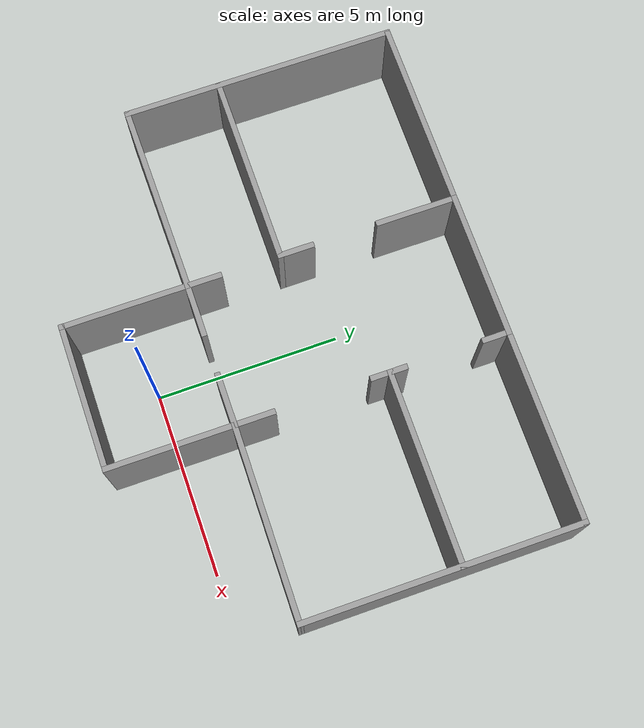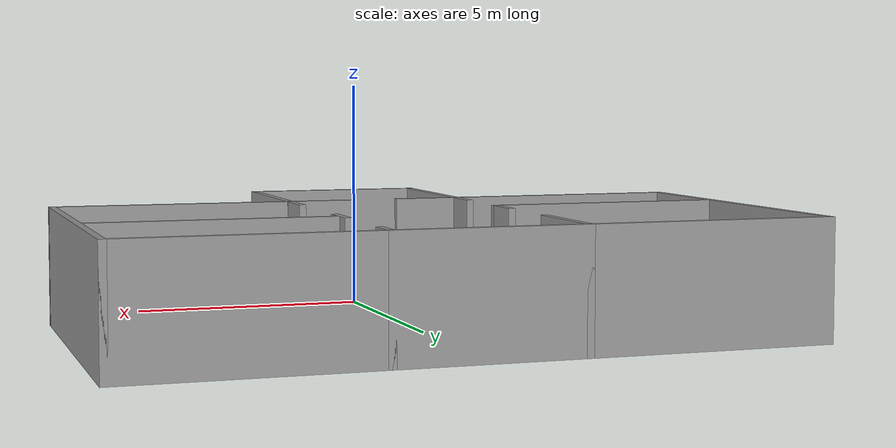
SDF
<?xml version='1.0'?>
<sdf version='1.7'>
  <model name='mieszkanie1'>
    <pose>0.001962 3.60263 0 0 -0 0</pose>
    <link name='Wall_12'>
      <collision name='Wall_12_Collision'>
        <geometry>
          <box>
            <size>1.5 0.15 2.5</size>
          </box>
        </geometry>
        <pose>0 0 1.25 0 -0 0</pose>
      </collision>
      <visual name='Wall_12_Visual'>
        <pose>0 0 1.25 0 -0 0</pose>
        <geometry>
          <box>
            <size>1.5 0.15 2.5</size>
          </box>
        </geometry>
        <material>
          <script>
            <uri>file://media/materials/scripts/gazebo.material</uri>
            <name>Gazebo/Grey</name>
          </script>
          <ambient>1 1 1 1</ambient>
        </material>
        <meta>
          <layer>0</layer>
        </meta>
      </visual>
      <pose>-1.24772 -1.97498 0 0 -0 0</pose>
    </link>
    <link name='Wall_14'>
      <collision name='Wall_14_Collision'>
        <geometry>
          <box>
            <size>1.5 0.15 2.5</size>
          </box>
        </geometry>
        <pose>0 0 1.25 0 -0 0</pose>
      </collision>
      <visual name='Wall_14_Visual'>
        <pose>0 0 1.25 0 -0 0</pose>
        <geometry>
          <box>
            <size>1.5 0.15 2.5</size>
          </box>
        </geometry>
        <material>
          <script>
            <uri>file://media/materials/scripts/gazebo.material</uri>
            <name>Gazebo/Grey</name>
          </script>
          <ambient>1 1 1 1</ambient>
        </material>
        <meta>
          <layer>0</layer>
        </meta>
      </visual>
      <pose>1.25228 -1.97498 0 0 -0 3.14159</pose>
    </link>
    <link name='Wall_16'>
      <collision name='Wall_16_Collision'>
        <geometry>
          <box>
            <size>1 0.15 2.5</size>
          </box>
        </geometry>
        <pose>0 0 1.25 0 -0 0</pose>
      </collision>
      <visual name='Wall_16_Visual'>
        <pose>0 0 1.25 0 -0 0</pose>
        <geometry>
          <box>
            <size>1 0.15 2.5</size>
          </box>
        </geometry>
        <material>
          <script>
            <uri>file://media/materials/scripts/gazebo.material</uri>
            <name>Gazebo/Grey</name>
          </script>
          <ambient>1 1 1 1</ambient>
        </material>
        <meta>
          <layer>0</layer>
        </meta>
      </visual>
      <pose>-1.92272 -1.54998 0 0 -0 1.5708</pose>
    </link>
    <link name='Wall_20'>
      <collision name='Wall_20_Collision'>
        <geometry>
          <box>
            <size>1 0.15 2.5</size>
          </box>
        </geometry>
        <pose>0 0 1.25 0 -0 0</pose>
      </collision>
      <visual name='Wall_20_Visual'>
        <pose>0 0 1.25 0 -0 0</pose>
        <geometry>
          <box>
            <size>1 0.15 2.5</size>
          </box>
        </geometry>
        <material>
          <script>
            <uri>file://media/materials/scripts/gazebo.material</uri>
            <name>Gazebo/Grey</name>
          </script>
          <ambient>1 1 1 1</ambient>
        </material>
        <meta>
          <layer>0</layer>
        </meta>
      </visual>
      <pose>-1.92263 0.949415 0 0 -0 -1.5708</pose>
    </link>
    <link name='Wall_26'>
      <collision name='Wall_26_Collision'>
        <geometry>
          <box>
            <size>2.25 0.15 2.5</size>
          </box>
        </geometry>
        <pose>0 0 1.25 0 -0 0</pose>
      </collision>
      <visual name='Wall_26_Visual'>
        <pose>0 0 1.25 0 -0 0</pose>
        <geometry>
          <box>
            <size>2.25 0.15 2.5</size>
          </box>
        </geometry>
        <material>
          <script>
            <uri>file://media/materials/scripts/gazebo.material</uri>
            <name>Gazebo/Grey</name>
          </script>
          <ambient>1 1 1 1</ambient>
        </material>
        <meta>
          <layer>0</layer>
        </meta>
      </visual>
      <pose>-1.925 4.27498 0 0 -0 -1.5708</pose>
    </link>
    <link name='Wall_28'>
      <collision name='Wall_28_Collision'>
        <geometry>
          <box>
            <size>1 0.15 2.5</size>
          </box>
        </geometry>
        <pose>0 0 1.25 0 -0 0</pose>
      </collision>
      <visual name='Wall_28_Visual'>
        <pose>0 0 1.25 0 -0 0</pose>
        <geometry>
          <box>
            <size>1 0.15 2.5</size>
          </box>
        </geometry>
        <material>
          <script>
            <uri>file://media/materials/scripts/gazebo.material</uri>
            <name>Gazebo/Grey</name>
          </script>
          <ambient>1 1 1 1</ambient>
        </material>
        <meta>
          <layer>0</layer>
        </meta>
      </visual>
      <pose>1.92512 -1.3999 0 0 -0 -1.5708</pose>
    </link>
    <link name='Wall_32'>
      <collision name='Wall_32_Collision'>
        <geometry>
          <box>
            <size>1 0.15 2.5</size>
          </box>
        </geometry>
        <pose>0 0 1.25 0 -0 0</pose>
      </collision>
      <visual name='Wall_32_Visual'>
        <pose>0 0 1.25 0 -0 0</pose>
        <geometry>
          <box>
            <size>1 0.15 2.5</size>
          </box>
        </geometry>
        <material>
          <script>
            <uri>file://media/materials/scripts/gazebo.material</uri>
            <name>Gazebo/Grey</name>
          </script>
          <ambient>1 1 1 1</ambient>
        </material>
        <meta>
          <layer>0</layer>
        </meta>
      </visual>
      <pose>1.9246 2.09998 0 0 -0 -1.5708</pose>
    </link>
    <link name='Wall_36'>
      <collision name='Wall_36_Collision'>
        <geometry>
          <box>
            <size>4 0.15 2.5</size>
          </box>
        </geometry>
        <pose>0 0 1.25 0 -0 0</pose>
      </collision>
      <visual name='Wall_36_Visual'>
        <pose>0 0 1.25 0 -0 0</pose>
        <geometry>
          <box>
            <size>4 0.15 2.5</size>
          </box>
        </geometry>
        <material>
          <script>
            <uri>file://media/materials/scripts/gazebo.material</uri>
            <name>Gazebo/Grey</name>
          </script>
          <ambient>1 1 1 1</ambient>
        </material>
        <meta>
          <layer>0</layer>
        </meta>
      </visual>
      <pose>-0 5.32498 0 0 -0 0</pose>
    </link>
    <link name='Wall_38'>
      <collision name='Wall_38_Collision'>
        <geometry>
          <box>
            <size>0.8 0.15 2.5</size>
          </box>
        </geometry>
        <pose>0 0 1.25 0 -0 0</pose>
      </collision>
      <visual name='Wall_38_Visual'>
        <pose>0 0 1.25 0 -0 0</pose>
        <geometry>
          <box>
            <size>0.8 0.15 2.5</size>
          </box>
        </geometry>
        <material>
          <script>
            <uri>file://media/materials/scripts/gazebo.material</uri>
            <name>Gazebo/Grey</name>
          </script>
          <ambient>1 1 1 1</ambient>
        </material>
        <meta>
          <layer>0</layer>
        </meta>
      </visual>
      <pose>1.925 4.99998 0 0 -0 -1.5708</pose>
    </link>
    <link name='Wall_4'>
      <collision name='Wall_4_Collision'>
        <geometry>
          <box>
            <size>4 0.15 2.5</size>
          </box>
        </geometry>
        <pose>0 0 1.25 0 -0 0</pose>
      </collision>
      <visual name='Wall_4_Visual'>
        <pose>0 0 1.25 0 -0 0</pose>
        <geometry>
          <box>
            <size>4 0.15 2.5</size>
          </box>
        </geometry>
        <material>
          <script>
            <uri>file://media/materials/scripts/gazebo.material</uri>
            <name>Gazebo/Grey</name>
          </script>
          <ambient>1 1 1 1</ambient>
        </material>
        <meta>
          <layer>0</layer>
        </meta>
      </visual>
      <pose>0.002282 -5.32498 0 0 -0 0</pose>
    </link>
    <link name='Wall_40'>
      <collision name='Wall_40_Collision'>
        <geometry>
          <box>
            <size>5.25 0.15 2.5</size>
          </box>
        </geometry>
        <pose>0 0 1.25 0 -0 0</pose>
      </collision>
      <visual name='Wall_40_Visual'>
        <pose>0 0 1.25 0 -0 0</pose>
        <geometry>
          <box>
            <size>5.25 0.15 2.5</size>
          </box>
        </geometry>
        <material>
          <script>
            <uri>file://media/materials/scripts/gazebo.material</uri>
            <name>Gazebo/Grey</name>
          </script>
          <ambient>1 1 1 1</ambient>
        </material>
        <meta>
          <layer>0</layer>
        </meta>
      </visual>
      <pose>4.475 5.32498 0 0 -0 0</pose>
    </link>
    <link name='Wall_41'>
      <collision name='Wall_41_Collision'>
        <geometry>
          <box>
            <size>7.5 0.15 2.5</size>
          </box>
        </geometry>
        <pose>0 0 1.25 0 -0 0</pose>
      </collision>
      <visual name='Wall_41_Visual'>
        <pose>0 0 1.25 0 -0 0</pose>
        <geometry>
          <box>
            <size>7.5 0.15 2.5</size>
          </box>
        </geometry>
        <material>
          <script>
            <uri>file://media/materials/scripts/gazebo.material</uri>
            <name>Gazebo/Grey</name>
          </script>
          <ambient>1 1 1 1</ambient>
        </material>
        <meta>
          <layer>0</layer>
        </meta>
      </visual>
      <pose>7.025 1.64998 0 0 -0 -1.5708</pose>
    </link>
    <link name='Wall_42'>
      <collision name='Wall_42_Collision'>
        <geometry>
          <box>
            <size>5.24796 0.15 2.5</size>
          </box>
        </geometry>
        <pose>0 0 1.25 0 -0 0</pose>
      </collision>
      <visual name='Wall_42_Visual'>
        <pose>0 0 1.25 0 -0 0</pose>
        <geometry>
          <box>
            <size>5.24796 0.15 2.5</size>
          </box>
        </geometry>
        <material>
          <script>
            <uri>file://media/materials/scripts/gazebo.material</uri>
            <name>Gazebo/Grey</name>
          </script>
          <ambient>1 1 1 1</ambient>
        </material>
        <meta>
          <layer>0</layer>
        </meta>
      </visual>
      <pose>4.47614 -2 0 0 -0 3.13178</pose>
    </link>
    <link name='Wall_44'>
      <collision name='Wall_44_Collision'>
        <geometry>
          <box>
            <size>5.25 0.15 2.5</size>
          </box>
        </geometry>
        <pose>0 0 1.25 0 -0 0</pose>
      </collision>
      <visual name='Wall_44_Visual'>
        <pose>0 0 1.25 0 -0 0</pose>
        <geometry>
          <box>
            <size>5.25 0.15 2.5</size>
          </box>
        </geometry>
        <material>
          <script>
            <uri>file://media/materials/scripts/gazebo.material</uri>
            <name>Gazebo/Grey</name>
          </script>
          <ambient>1 1 1 1</ambient>
        </material>
        <meta>
          <layer>0</layer>
        </meta>
      </visual>
      <pose>4.47411 2.13527 0 0 -0 0</pose>
    </link>
    <link name='Wall_49'>
      <collision name='Wall_49_Collision'>
        <geometry>
          <box>
            <size>5.25 0.15 2.5</size>
          </box>
        </geometry>
        <pose>0 0 1.25 0 -0 0</pose>
      </collision>
      <visual name='Wall_49_Visual'>
        <pose>0 0 1.25 0 -0 0</pose>
        <geometry>
          <box>
            <size>5.25 0.15 2.5</size>
          </box>
        </geometry>
        <material>
          <script>
            <uri>file://media/materials/scripts/gazebo.material</uri>
            <name>Gazebo/Grey</name>
          </script>
          <ambient>1 1 1 1</ambient>
        </material>
        <meta>
          <layer>0</layer>
        </meta>
      </visual>
      <pose>-4.475 5.32498 0 0 -0 3.14159</pose>
    </link>
    <link name='Wall_50'>
      <collision name='Wall_50_Collision'>
        <geometry>
          <box>
            <size>7.5 0.15 2.5</size>
          </box>
        </geometry>
        <pose>0 0 1.25 0 -0 0</pose>
      </collision>
      <visual name='Wall_50_Visual'>
        <pose>0 0 1.25 0 -0 0</pose>
        <geometry>
          <box>
            <size>7.5 0.15 2.5</size>
          </box>
        </geometry>
        <material>
          <script>
            <uri>file://media/materials/scripts/gazebo.material</uri>
            <name>Gazebo/Grey</name>
          </script>
          <ambient>1 1 1 1</ambient>
        </material>
        <meta>
          <layer>0</layer>
        </meta>
      </visual>
      <pose>-7.025 1.64998 0 0 -0 -1.5708</pose>
    </link>
    <link name='Wall_51'>
      <collision name='Wall_51_Collision'>
        <geometry>
          <box>
            <size>5.25253 0.15 2.5</size>
          </box>
        </geometry>
        <pose>0 0 1.25 0 -0 0</pose>
      </collision>
      <visual name='Wall_51_Visual'>
        <pose>0 0 1.25 0 -0 0</pose>
        <geometry>
          <box>
            <size>5.25253 0.15 2.5</size>
          </box>
        </geometry>
        <material>
          <script>
            <uri>file://media/materials/scripts/gazebo.material</uri>
            <name>Gazebo/Grey</name>
          </script>
          <ambient>1 1 1 1</ambient>
        </material>
        <meta>
          <layer>0</layer>
        </meta>
      </visual>
      <pose>-4.47386 -2 0 0 -0 0.009806</pose>
    </link>
    <link name='Wall_54'>
      <collision name='Wall_54_Collision'>
        <geometry>
          <box>
            <size>5.25 0.15 2.5</size>
          </box>
        </geometry>
        <pose>0 0 1.25 0 -0 0</pose>
      </collision>
      <visual name='Wall_54_Visual'>
        <pose>0 0 1.25 0 -0 0</pose>
        <geometry>
          <box>
            <size>5.25 0.15 2.5</size>
          </box>
        </geometry>
        <material>
          <script>
            <uri>file://media/materials/scripts/gazebo.material</uri>
            <name>Gazebo/Grey</name>
          </script>
          <ambient>1 1 1 1</ambient>
        </material>
        <meta>
          <layer>0</layer>
        </meta>
      </visual>
      <pose>-4.47263 0.524414 0 0 -0 3.14159</pose>
    </link>
    <link name='Wall_6'>
      <collision name='Wall_6_Collision'>
        <geometry>
          <box>
            <size>3.5 0.15 2.5</size>
          </box>
        </geometry>
        <pose>0 0 1.25 0 -0 0</pose>
      </collision>
      <visual name='Wall_6_Visual'>
        <pose>0 0 1.25 0 -0 0</pose>
        <geometry>
          <box>
            <size>3.5 0.15 2.5</size>
          </box>
        </geometry>
        <material>
          <script>
            <uri>file://media/materials/scripts/gazebo.material</uri>
            <name>Gazebo/Grey</name>
          </script>
          <ambient>1 1 1 1</ambient>
        </material>
        <meta>
          <layer>0</layer>
        </meta>
      </visual>
      <pose>-1.92272 -3.64998 0 0 -0 1.5708</pose>
    </link>
    <link name='Wall_8'>
      <collision name='Wall_8_Collision'>
        <geometry>
          <box>
            <size>3.5 0.15 2.5</size>
          </box>
        </geometry>
        <pose>0 0 1.25 0 -0 0</pose>
      </collision>
      <visual name='Wall_8_Visual'>
        <pose>0 0 1.25 0 -0 0</pose>
        <geometry>
          <box>
            <size>3.5 0.15 2.5</size>
          </box>
        </geometry>
        <material>
          <script>
            <uri>file://media/materials/scripts/gazebo.material</uri>
            <name>Gazebo/Grey</name>
          </script>
          <ambient>1 1 1 1</ambient>
        </material>
        <meta>
          <layer>0</layer>
        </meta>
      </visual>
      <pose>1.92728 -3.64998 0 0 -0 1.5708</pose>
    </link>
    <static>1</static>
  </model>
</sdf>
